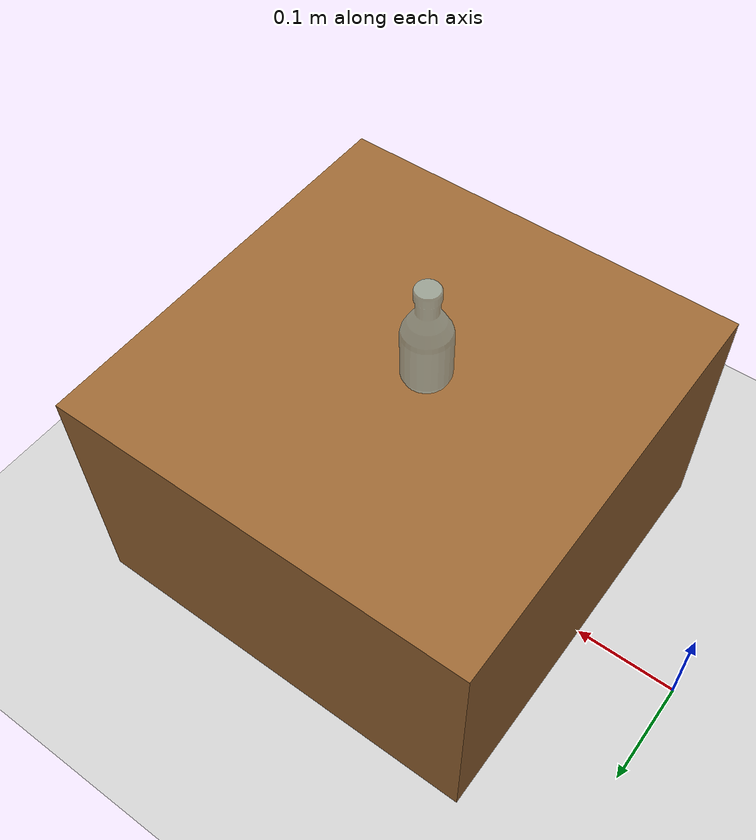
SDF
<?xml version="1.0" ?>
<sdf version="1.9">
  <world name="pick_and_place_world">

    <!-- Physics -->
    <physics name="default_physics" type="ode">
      <max_step_size>0.001</max_step_size>
      <real_time_factor>1.0</real_time_factor>
      <real_time_update_rate>1000</real_time_update_rate>
    </physics>

    <!-- Plugins -->
    <plugin filename="gz-sim-physics-system" name="gz::sim::systems::Physics"/>
    <plugin filename="gz-sim-scene-broadcaster-system" name="gz::sim::systems::SceneBroadcaster"/>
    <plugin filename="gz-sim-user-commands-system" name="gz::sim::systems::UserCommands"/>
    <plugin filename="gz-sim-sensors-system" name="gz::sim::systems::Sensors">
      <render_engine>ogre2</render_engine>
    </plugin>

    <!-- Lighting -->
    <light type="directional" name="sun">
      <cast_shadows>true</cast_shadows>
      <pose>0 0 10 0 0 0</pose>
      <diffuse>0.9 0.9 0.9 1</diffuse>
      <specular>0.3 0.3 0.3 1</specular>
      <direction>-0.5 0.1 -0.9</direction>
    </light>

    <light type="point" name="fill_light">
      <pose>0 -2 3 0 0 0</pose>
      <diffuse>0.4 0.4 0.4 1</diffuse>
      <specular>0.1 0.1 0.1 1</specular>
      <attenuation>
        <range>20</range>
      </attenuation>
    </light>

    <!-- Ground Plane -->
    <model name="ground_plane">
      <static>true</static>
      <link name="link">
        <collision name="collision">
          <geometry>
            <plane>
              <normal>0 0 1</normal>
              <size>5 5</size>
            </plane>
          </geometry>
        </collision>
        <visual name="visual">
          <geometry>
            <plane>
              <normal>0 0 1</normal>
              <size>5 5</size>
            </plane>
          </geometry>
          <material>
            <ambient>0.8 0.8 0.8 1</ambient>
            <diffuse>0.8 0.8 0.8 1</diffuse>
          </material>
        </visual>
      </link>
    </model>

    <!-- Table -->
    <model name="table">
      <static>true</static>
      <pose>0.30 0 0.125 0 0 0</pose>
      <link name="table_link">
        <collision name="collision">
          <geometry>
            <box>
              <size>0.40 0.40 0.25</size>
            </box>
          </geometry>
        </collision>
        <visual name="visual">
          <geometry>
            <box>
              <size>0.40 0.40 0.25</size>
            </box>
          </geometry>
          <material>
            <ambient>0.6 0.4 0.2 1</ambient>
            <diffuse>0.6 0.4 0.2 1</diffuse>
          </material>
        </visual>
      </link>
    </model>

    <!-- Focused Model: Transparent Glass Bottle (Benchmark failure: refraction & missing depth) -->
    <model name="glass_bottle">
      <pose>0.28 0.0 0.251 0 0 0</pose>
      <link name="link">
        <inertial>
          <mass>0.080</mass>
          <inertia>
            <ixx>0.00004</ixx>
            <iyy>0.00004</iyy>
            <izz>0.00002</izz>
          </inertia>
        </inertial>
        <collision name="bottle_col">
          <pose>0 0 0.05 0 0 0</pose>
          <geometry>
            <cylinder>
              <radius>0.022</radius>
              <length>0.10</length>
            </cylinder>
          </geometry>
          <surface>
            <friction>
              <ode>
                <mu>30.0</mu>
                <mu2>30.0</mu2>
              </ode>
            </friction>
          </surface>
        </collision>
        <visual name="visual">
          <geometry>
            <mesh>
              <uri>file:///home/tienle/.gemini/antigravity/scratch/robot_3dof_ws/src/robot_3dof/meshes/objects/glass_bottle.obj</uri>
            </mesh>
          </geometry>
          <material>
            <ambient>0.6 0.85 0.95 0.5</ambient>
            <diffuse>0.6 0.85 0.95 0.5</diffuse>
            <specular>0.9 0.95 1.0 1</specular>
          </material>
        </visual>
      </link>
    </model>

  </world>
</sdf>
